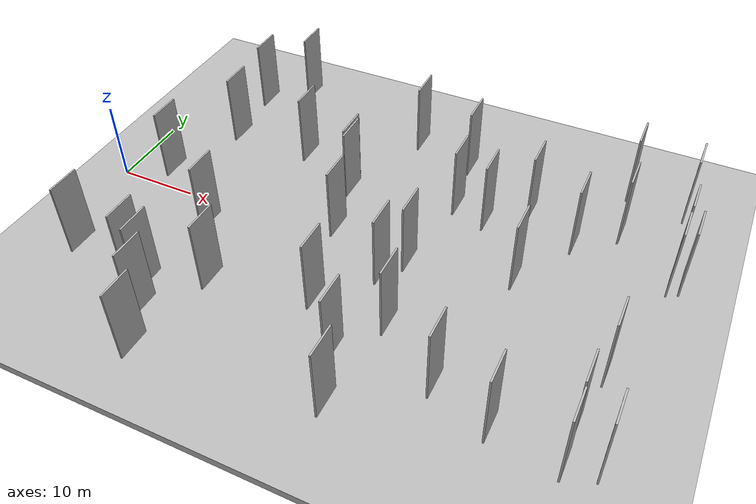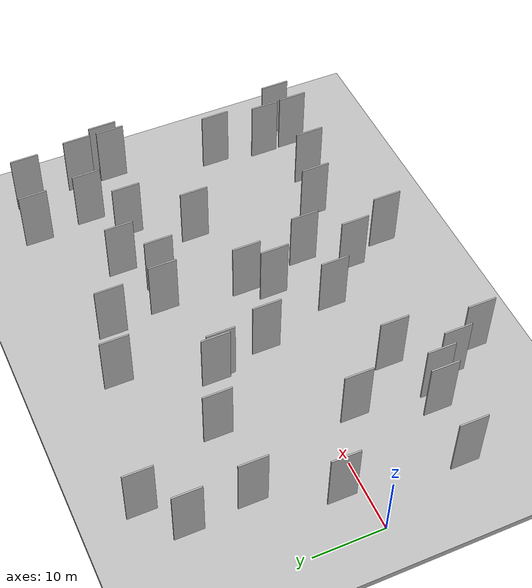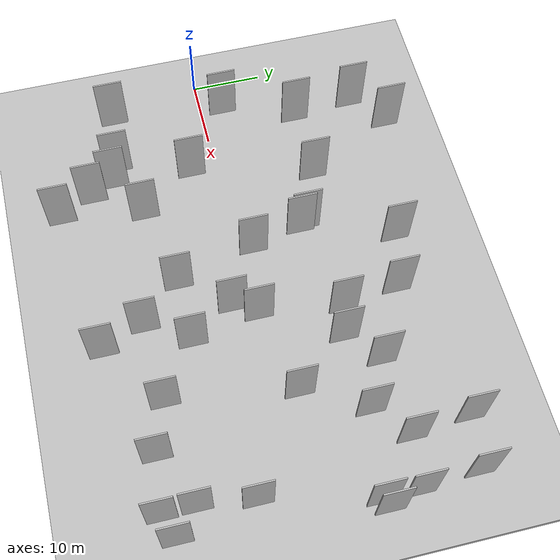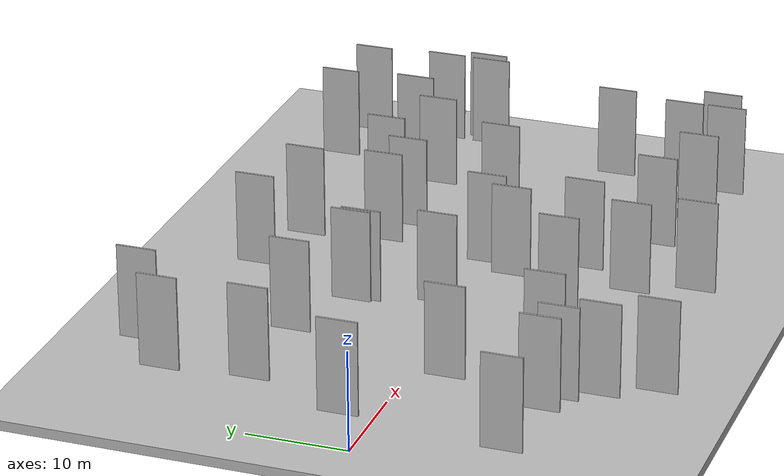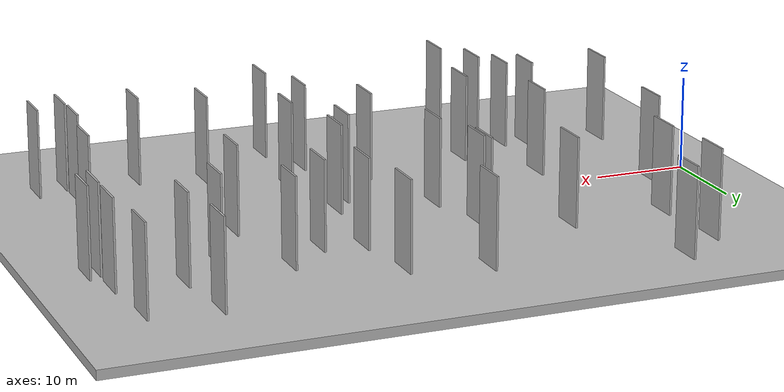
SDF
<?xml version="1.0" encoding="utf-8"?>

<sdf version="1.6">

   <world name="default">

      <gui fullscreen="0">

         <camera name="user_camera">

            <pose>-15 0 4.57585 0 0 0</pose>

            <view_controller>orbit</view_controller>

         </camera>

      </gui>

      <scene>

         <sky>

           <clouds>

             <speed>12</speed>

           </clouds>

         </sky>

         <ambient>0.4 0.4 0.4 1</ambient>

         <background>0.7 0.7 0.7 1</background>

         <shadows>1</shadows>

      </scene>

      <gravity>0 0 -9.8066</gravity>

      <magnetic_field>6e-06 2.3e-05 -4.2e-05</magnetic_field>

      <physics default="0" name="default_physics" type="ode">

         <ode>

            <solver>

               <type>quick</type>

               <iters>10</iters>

               <sor>1.0</sor>

               <use_dynamic_moi_rescaling>0</use_dynamic_moi_rescaling>

            </solver>

            <constraints>

               <cfm>0</cfm>

               <erp>0.2</erp>

               <contact_max_correcting_vel>100</contact_max_correcting_vel>

               <contact_surface_layer>0.001</contact_surface_layer>

            </constraints>

         </ode>

         <max_step_size>0.004</max_step_size>

         <real_time_factor>1</real_time_factor>

         <real_time_update_rate>250</real_time_update_rate>

      </physics>

      <light name="sun" type="directional">

         <cast_shadows>1</cast_shadows>

         <pose>0 0 10 0 0 0</pose>

         <diffuse>0.8 0.8 0.8 1</diffuse>

         <specular>0.2 0.2 0.2 1</specular>

         <attenuation>

            <range>1000</range>

            <constant>0.9</constant>

            <linear>0.01</linear>

            <quadratic>0.001</quadratic>

         </attenuation>

         <direction>-0.5 0.1 -0.9</direction>

      </light>

      <include>

         <name>ground_plane_1</name>

         <uri>model://HANNAS_ground_plane</uri>

         <pose>0 0 0  0 0 0</pose>

      </include>

      <include>

         <name>ground_plane_2</name>

         <uri>model://HANNAS_ground_plane</uri>

         <pose>100 0 0  0 0 0</pose>

      </include>

      <model name="HANNAS_wall_1">

         <static>1</static>

         <pose frame="">40.7307 19.8283 0.0 0.000000 0.000000 1.570796</pose>

         <link name="link">

            <pose frame="">0 0 5.00 0 0 0</pose>

            <collision name="collision">

               <geometry>

                  <box>

                     <size>4.00 0.2 10.00</size>

                  </box>

               </geometry>

               <max_contacts>10</max_contacts>

               <surface>

                  <contact>

                     <ode/>

                  </contact>

                  <bounce/>

                  <friction>

                     <torsional>

                        <ode/>

                     </torsional>

                     <ode/>

                  </friction>

               </surface>

            </collision>

            <visual name="visual">

               <cast_shadows>0</cast_shadows>

               <geometry>

                  <box>

                     <size>4.00 0.2 10.00</size>

                  </box>

               </geometry>

               <material>

                  <script>

                     <uri>model://HANNAS_wall/materials/scripts</uri>

                     <uri>model://HANNAS_wall/materials/textures</uri>

                     <name>vrc/HANNAS_wall</name>

                  </script>

               </material>

            </visual>

            <self_collide>0</self_collide>

            <enable_wind>0</enable_wind>

            <kinematic>0</kinematic>

         </link>

      </model>

      <model name="HANNAS_wall_2">

         <static>1</static>

         <pose frame="">33.2767 -9.0549 0.0 0.000000 0.000000 1.570796</pose>

         <link name="link">

            <pose frame="">0 0 5.00 0 0 0</pose>

            <collision name="collision">

               <geometry>

                  <box>

                     <size>4.00 0.2 10.00</size>

                  </box>

               </geometry>

               <max_contacts>10</max_contacts>

               <surface>

                  <contact>

                     <ode/>

                  </contact>

                  <bounce/>

                  <friction>

                     <torsional>

                        <ode/>

                     </torsional>

                     <ode/>

                  </friction>

               </surface>

            </collision>

            <visual name="visual">

               <cast_shadows>0</cast_shadows>

               <geometry>

                  <box>

                     <size>4.00 0.2 10.00</size>

                  </box>

               </geometry>

               <material>

                  <script>

                     <uri>model://HANNAS_wall/materials/scripts</uri>

                     <uri>model://HANNAS_wall/materials/textures</uri>

                     <name>vrc/HANNAS_wall</name>

                  </script>

               </material>

            </visual>

            <self_collide>0</self_collide>

            <enable_wind>0</enable_wind>

            <kinematic>0</kinematic>

         </link>

      </model>

      <model name="HANNAS_wall_3">

         <static>1</static>

         <pose frame="">8.7063 22.1134 0.0 0.000000 0.000000 1.570796</pose>

         <link name="link">

            <pose frame="">0 0 5.00 0 0 0</pose>

            <collision name="collision">

               <geometry>

                  <box>

                     <size>4.00 0.2 10.00</size>

                  </box>

               </geometry>

               <max_contacts>10</max_contacts>

               <surface>

                  <contact>

                     <ode/>

                  </contact>

                  <bounce/>

                  <friction>

                     <torsional>

                        <ode/>

                     </torsional>

                     <ode/>

                  </friction>

               </surface>

            </collision>

            <visual name="visual">

               <cast_shadows>0</cast_shadows>

               <geometry>

                  <box>

                     <size>4.00 0.2 10.00</size>

                  </box>

               </geometry>

               <material>

                  <script>

                     <uri>model://HANNAS_wall/materials/scripts</uri>

                     <uri>model://HANNAS_wall/materials/textures</uri>

                     <name>vrc/HANNAS_wall</name>

                  </script>

               </material>

            </visual>

            <self_collide>0</self_collide>

            <enable_wind>0</enable_wind>

            <kinematic>0</kinematic>

         </link>

      </model>

      <model name="HANNAS_wall_4">

         <static>1</static>

         <pose frame="">32.7953 22.0406 0.0 0.000000 0.000000 1.570796</pose>

         <link name="link">

            <pose frame="">0 0 5.00 0 0 0</pose>

            <collision name="collision">

               <geometry>

                  <box>

                     <size>4.00 0.2 10.00</size>

                  </box>

               </geometry>

               <max_contacts>10</max_contacts>

               <surface>

                  <contact>

                     <ode/>

                  </contact>

                  <bounce/>

                  <friction>

                     <torsional>

                        <ode/>

                     </torsional>

                     <ode/>

                  </friction>

               </surface>

            </collision>

            <visual name="visual">

               <cast_shadows>0</cast_shadows>

               <geometry>

                  <box>

                     <size>4.00 0.2 10.00</size>

                  </box>

               </geometry>

               <material>

                  <script>

                     <uri>model://HANNAS_wall/materials/scripts</uri>

                     <uri>model://HANNAS_wall/materials/textures</uri>

                     <name>vrc/HANNAS_wall</name>

                  </script>

               </material>

            </visual>

            <self_collide>0</self_collide>

            <enable_wind>0</enable_wind>

            <kinematic>0</kinematic>

         </link>

      </model>

      <model name="HANNAS_wall_5">

         <static>1</static>

         <pose frame="">38.3207 -2.6316 0.0 0.000000 0.000000 1.570796</pose>

         <link name="link">

            <pose frame="">0 0 5.00 0 0 0</pose>

            <collision name="collision">

               <geometry>

                  <box>

                     <size>4.00 0.2 10.00</size>

                  </box>

               </geometry>

               <max_contacts>10</max_contacts>

               <surface>

                  <contact>

                     <ode/>

                  </contact>

                  <bounce/>

                  <friction>

                     <torsional>

                        <ode/>

                     </torsional>

                     <ode/>

                  </friction>

               </surface>

            </collision>

            <visual name="visual">

               <cast_shadows>0</cast_shadows>

               <geometry>

                  <box>

                     <size>4.00 0.2 10.00</size>

                  </box>

               </geometry>

               <material>

                  <script>

                     <uri>model://HANNAS_wall/materials/scripts</uri>

                     <uri>model://HANNAS_wall/materials/textures</uri>

                     <name>vrc/HANNAS_wall</name>

                  </script>

               </material>

            </visual>

            <self_collide>0</self_collide>

            <enable_wind>0</enable_wind>

            <kinematic>0</kinematic>

         </link>

      </model>

      <model name="HANNAS_wall_6">

         <static>1</static>

         <pose frame="">3.9471 -13.0017 0.0 0.000000 0.000000 1.570796</pose>

         <link name="link">

            <pose frame="">0 0 5.00 0 0 0</pose>

            <collision name="collision">

               <geometry>

                  <box>

                     <size>4.00 0.2 10.00</size>

                  </box>

               </geometry>

               <max_contacts>10</max_contacts>

               <surface>

                  <contact>

                     <ode/>

                  </contact>

                  <bounce/>

                  <friction>

                     <torsional>

                        <ode/>

                     </torsional>

                     <ode/>

                  </friction>

               </surface>

            </collision>

            <visual name="visual">

               <cast_shadows>0</cast_shadows>

               <geometry>

                  <box>

                     <size>4.00 0.2 10.00</size>

                  </box>

               </geometry>

               <material>

                  <script>

                     <uri>model://HANNAS_wall/materials/scripts</uri>

                     <uri>model://HANNAS_wall/materials/textures</uri>

                     <name>vrc/HANNAS_wall</name>

                  </script>

               </material>

            </visual>

            <self_collide>0</self_collide>

            <enable_wind>0</enable_wind>

            <kinematic>0</kinematic>

         </link>

      </model>

      <model name="HANNAS_wall_7">

         <static>1</static>

         <pose frame="">56.5104 -16.4994 0.0 0.000000 0.000000 1.570796</pose>

         <link name="link">

            <pose frame="">0 0 5.00 0 0 0</pose>

            <collision name="collision">

               <geometry>

                  <box>

                     <size>4.00 0.2 10.00</size>

                  </box>

               </geometry>

               <max_contacts>10</max_contacts>

               <surface>

                  <contact>

                     <ode/>

                  </contact>

                  <bounce/>

                  <friction>

                     <torsional>

                        <ode/>

                     </torsional>

                     <ode/>

                  </friction>

               </surface>

            </collision>

            <visual name="visual">

               <cast_shadows>0</cast_shadows>

               <geometry>

                  <box>

                     <size>4.00 0.2 10.00</size>

                  </box>

               </geometry>

               <material>

                  <script>

                     <uri>model://HANNAS_wall/materials/scripts</uri>

                     <uri>model://HANNAS_wall/materials/textures</uri>

                     <name>vrc/HANNAS_wall</name>

                  </script>

               </material>

            </visual>

            <self_collide>0</self_collide>

            <enable_wind>0</enable_wind>

            <kinematic>0</kinematic>

         </link>

      </model>

      <model name="HANNAS_wall_8">

         <static>1</static>

         <pose frame="">46.0687 10.8456 0.0 0.000000 0.000000 1.570796</pose>

         <link name="link">

            <pose frame="">0 0 5.00 0 0 0</pose>

            <collision name="collision">

               <geometry>

                  <box>

                     <size>4.00 0.2 10.00</size>

                  </box>

               </geometry>

               <max_contacts>10</max_contacts>

               <surface>

                  <contact>

                     <ode/>

                  </contact>

                  <bounce/>

                  <friction>

                     <torsional>

                        <ode/>

                     </torsional>

                     <ode/>

                  </friction>

               </surface>

            </collision>

            <visual name="visual">

               <cast_shadows>0</cast_shadows>

               <geometry>

                  <box>

                     <size>4.00 0.2 10.00</size>

                  </box>

               </geometry>

               <material>

                  <script>

                     <uri>model://HANNAS_wall/materials/scripts</uri>

                     <uri>model://HANNAS_wall/materials/textures</uri>

                     <name>vrc/HANNAS_wall</name>

                  </script>

               </material>

            </visual>

            <self_collide>0</self_collide>

            <enable_wind>0</enable_wind>

            <kinematic>0</kinematic>

         </link>

      </model>

      <model name="HANNAS_wall_9">

         <static>1</static>

         <pose frame="">9.5039 13.4034 0.0 0.000000 0.000000 1.570796</pose>

         <link name="link">

            <pose frame="">0 0 5.00 0 0 0</pose>

            <collision name="collision">

               <geometry>

                  <box>

                     <size>4.00 0.2 10.00</size>

                  </box>

               </geometry>

               <max_contacts>10</max_contacts>

               <surface>

                  <contact>

                     <ode/>

                  </contact>

                  <bounce/>

                  <friction>

                     <torsional>

                        <ode/>

                     </torsional>

                     <ode/>

                  </friction>

               </surface>

            </collision>

            <visual name="visual">

               <cast_shadows>0</cast_shadows>

               <geometry>

                  <box>

                     <size>4.00 0.2 10.00</size>

                  </box>

               </geometry>

               <material>

                  <script>

                     <uri>model://HANNAS_wall/materials/scripts</uri>

                     <uri>model://HANNAS_wall/materials/textures</uri>

                     <name>vrc/HANNAS_wall</name>

                  </script>

               </material>

            </visual>

            <self_collide>0</self_collide>

            <enable_wind>0</enable_wind>

            <kinematic>0</kinematic>

         </link>

      </model>

      <model name="HANNAS_wall_10">

         <static>1</static>

         <pose frame="">68.3991 14.4143 0.0 0.000000 0.000000 1.570796</pose>

         <link name="link">

            <pose frame="">0 0 5.00 0 0 0</pose>

            <collision name="collision">

               <geometry>

                  <box>

                     <size>4.00 0.2 10.00</size>

                  </box>

               </geometry>

               <max_contacts>10</max_contacts>

               <surface>

                  <contact>

                     <ode/>

                  </contact>

                  <bounce/>

                  <friction>

                     <torsional>

                        <ode/>

                     </torsional>

                     <ode/>

                  </friction>

               </surface>

            </collision>

            <visual name="visual">

               <cast_shadows>0</cast_shadows>

               <geometry>

                  <box>

                     <size>4.00 0.2 10.00</size>

                  </box>

               </geometry>

               <material>

                  <script>

                     <uri>model://HANNAS_wall/materials/scripts</uri>

                     <uri>model://HANNAS_wall/materials/textures</uri>

                     <name>vrc/HANNAS_wall</name>

                  </script>

               </material>

            </visual>

            <self_collide>0</self_collide>

            <enable_wind>0</enable_wind>

            <kinematic>0</kinematic>

         </link>

      </model>

      <model name="HANNAS_wall_11">

         <static>1</static>

         <pose frame="">16.8384 -18.1993 0.0 0.000000 0.000000 1.570796</pose>

         <link name="link">

            <pose frame="">0 0 5.00 0 0 0</pose>

            <collision name="collision">

               <geometry>

                  <box>

                     <size>4.00 0.2 10.00</size>

                  </box>

               </geometry>

               <max_contacts>10</max_contacts>

               <surface>

                  <contact>

                     <ode/>

                  </contact>

                  <bounce/>

                  <friction>

                     <torsional>

                        <ode/>

                     </torsional>

                     <ode/>

                  </friction>

               </surface>

            </collision>

            <visual name="visual">

               <cast_shadows>0</cast_shadows>

               <geometry>

                  <box>

                     <size>4.00 0.2 10.00</size>

                  </box>

               </geometry>

               <material>

                  <script>

                     <uri>model://HANNAS_wall/materials/scripts</uri>

                     <uri>model://HANNAS_wall/materials/textures</uri>

                     <name>vrc/HANNAS_wall</name>

                  </script>

               </material>

            </visual>

            <self_collide>0</self_collide>

            <enable_wind>0</enable_wind>

            <kinematic>0</kinematic>

         </link>

      </model>

      <model name="HANNAS_wall_12">

         <static>1</static>

         <pose frame="">64.0251 -12.9024 0.0 0.000000 0.000000 1.570796</pose>

         <link name="link">

            <pose frame="">0 0 5.00 0 0 0</pose>

            <collision name="collision">

               <geometry>

                  <box>

                     <size>4.00 0.2 10.00</size>

                  </box>

               </geometry>

               <max_contacts>10</max_contacts>

               <surface>

                  <contact>

                     <ode/>

                  </contact>

                  <bounce/>

                  <friction>

                     <torsional>

                        <ode/>

                     </torsional>

                     <ode/>

                  </friction>

               </surface>

            </collision>

            <visual name="visual">

               <cast_shadows>0</cast_shadows>

               <geometry>

                  <box>

                     <size>4.00 0.2 10.00</size>

                  </box>

               </geometry>

               <material>

                  <script>

                     <uri>model://HANNAS_wall/materials/scripts</uri>

                     <uri>model://HANNAS_wall/materials/textures</uri>

                     <name>vrc/HANNAS_wall</name>

                  </script>

               </material>

            </visual>

            <self_collide>0</self_collide>

            <enable_wind>0</enable_wind>

            <kinematic>0</kinematic>

         </link>

      </model>

      <model name="HANNAS_wall_13">

         <static>1</static>

         <pose frame="">15.6919 -3.6150 0.0 0.000000 0.000000 1.570796</pose>

         <link name="link">

            <pose frame="">0 0 5.00 0 0 0</pose>

            <collision name="collision">

               <geometry>

                  <box>

                     <size>4.00 0.2 10.00</size>

                  </box>

               </geometry>

               <max_contacts>10</max_contacts>

               <surface>

                  <contact>

                     <ode/>

                  </contact>

                  <bounce/>

                  <friction>

                     <torsional>

                        <ode/>

                     </torsional>

                     <ode/>

                  </friction>

               </surface>

            </collision>

            <visual name="visual">

               <cast_shadows>0</cast_shadows>

               <geometry>

                  <box>

                     <size>4.00 0.2 10.00</size>

                  </box>

               </geometry>

               <material>

                  <script>

                     <uri>model://HANNAS_wall/materials/scripts</uri>

                     <uri>model://HANNAS_wall/materials/textures</uri>

                     <name>vrc/HANNAS_wall</name>

                  </script>

               </material>

            </visual>

            <self_collide>0</self_collide>

            <enable_wind>0</enable_wind>

            <kinematic>0</kinematic>

         </link>

      </model>

      <model name="HANNAS_wall_14">

         <static>1</static>

         <pose frame="">64.1314 -17.3532 0.0 0.000000 0.000000 1.570796</pose>

         <link name="link">

            <pose frame="">0 0 5.00 0 0 0</pose>

            <collision name="collision">

               <geometry>

                  <box>

                     <size>4.00 0.2 10.00</size>

                  </box>

               </geometry>

               <max_contacts>10</max_contacts>

               <surface>

                  <contact>

                     <ode/>

                  </contact>

                  <bounce/>

                  <friction>

                     <torsional>

                        <ode/>

                     </torsional>

                     <ode/>

                  </friction>

               </surface>

            </collision>

            <visual name="visual">

               <cast_shadows>0</cast_shadows>

               <geometry>

                  <box>

                     <size>4.00 0.2 10.00</size>

                  </box>

               </geometry>

               <material>

                  <script>

                     <uri>model://HANNAS_wall/materials/scripts</uri>

                     <uri>model://HANNAS_wall/materials/textures</uri>

                     <name>vrc/HANNAS_wall</name>

                  </script>

               </material>

            </visual>

            <self_collide>0</self_collide>

            <enable_wind>0</enable_wind>

            <kinematic>0</kinematic>

         </link>

      </model>

      <model name="HANNAS_wall_15">

         <static>1</static>

         <pose frame="">50.5043 14.7641 0.0 0.000000 0.000000 1.570796</pose>

         <link name="link">

            <pose frame="">0 0 5.00 0 0 0</pose>

            <collision name="collision">

               <geometry>

                  <box>

                     <size>4.00 0.2 10.00</size>

                  </box>

               </geometry>

               <max_contacts>10</max_contacts>

               <surface>

                  <contact>

                     <ode/>

                  </contact>

                  <bounce/>

                  <friction>

                     <torsional>

                        <ode/>

                     </torsional>

                     <ode/>

                  </friction>

               </surface>

            </collision>

            <visual name="visual">

               <cast_shadows>0</cast_shadows>

               <geometry>

                  <box>

                     <size>4.00 0.2 10.00</size>

                  </box>

               </geometry>

               <material>

                  <script>

                     <uri>model://HANNAS_wall/materials/scripts</uri>

                     <uri>model://HANNAS_wall/materials/textures</uri>

                     <name>vrc/HANNAS_wall</name>

                  </script>

               </material>

            </visual>

            <self_collide>0</self_collide>

            <enable_wind>0</enable_wind>

            <kinematic>0</kinematic>

         </link>

      </model>

      <model name="HANNAS_wall_16">

         <static>1</static>

         <pose frame="">21.2338 -11.4759 0.0 0.000000 0.000000 1.570796</pose>

         <link name="link">

            <pose frame="">0 0 5.00 0 0 0</pose>

            <collision name="collision">

               <geometry>

                  <box>

                     <size>4.00 0.2 10.00</size>

                  </box>

               </geometry>

               <max_contacts>10</max_contacts>

               <surface>

                  <contact>

                     <ode/>

                  </contact>

                  <bounce/>

                  <friction>

                     <torsional>

                        <ode/>

                     </torsional>

                     <ode/>

                  </friction>

               </surface>

            </collision>

            <visual name="visual">

               <cast_shadows>0</cast_shadows>

               <geometry>

                  <box>

                     <size>4.00 0.2 10.00</size>

                  </box>

               </geometry>

               <material>

                  <script>

                     <uri>model://HANNAS_wall/materials/scripts</uri>

                     <uri>model://HANNAS_wall/materials/textures</uri>

                     <name>vrc/HANNAS_wall</name>

                  </script>

               </material>

            </visual>

            <self_collide>0</self_collide>

            <enable_wind>0</enable_wind>

            <kinematic>0</kinematic>

         </link>

      </model>

      <model name="HANNAS_wall_17">

         <static>1</static>

         <pose frame="">67.4018 -16.0498 0.0 0.000000 0.000000 1.570796</pose>

         <link name="link">

            <pose frame="">0 0 5.00 0 0 0</pose>

            <collision name="collision">

               <geometry>

                  <box>

                     <size>4.00 0.2 10.00</size>

                  </box>

               </geometry>

               <max_contacts>10</max_contacts>

               <surface>

                  <contact>

                     <ode/>

                  </contact>

                  <bounce/>

                  <friction>

                     <torsional>

                        <ode/>

                     </torsional>

                     <ode/>

                  </friction>

               </surface>

            </collision>

            <visual name="visual">

               <cast_shadows>0</cast_shadows>

               <geometry>

                  <box>

                     <size>4.00 0.2 10.00</size>

                  </box>

               </geometry>

               <material>

                  <script>

                     <uri>model://HANNAS_wall/materials/scripts</uri>

                     <uri>model://HANNAS_wall/materials/textures</uri>

                     <name>vrc/HANNAS_wall</name>

                  </script>

               </material>

            </visual>

            <self_collide>0</self_collide>

            <enable_wind>0</enable_wind>

            <kinematic>0</kinematic>

         </link>

      </model>

      <model name="HANNAS_wall_18">

         <static>1</static>

         <pose frame="">28.4994 9.3930 0.0 0.000000 0.000000 1.570796</pose>

         <link name="link">

            <pose frame="">0 0 5.00 0 0 0</pose>

            <collision name="collision">

               <geometry>

                  <box>

                     <size>4.00 0.2 10.00</size>

                  </box>

               </geometry>

               <max_contacts>10</max_contacts>

               <surface>

                  <contact>

                     <ode/>

                  </contact>

                  <bounce/>

                  <friction>

                     <torsional>

                        <ode/>

                     </torsional>

                     <ode/>

                  </friction>

               </surface>

            </collision>

            <visual name="visual">

               <cast_shadows>0</cast_shadows>

               <geometry>

                  <box>

                     <size>4.00 0.2 10.00</size>

                  </box>

               </geometry>

               <material>

                  <script>

                     <uri>model://HANNAS_wall/materials/scripts</uri>

                     <uri>model://HANNAS_wall/materials/textures</uri>

                     <name>vrc/HANNAS_wall</name>

                  </script>

               </material>

            </visual>

            <self_collide>0</self_collide>

            <enable_wind>0</enable_wind>

            <kinematic>0</kinematic>

         </link>

      </model>

      <model name="HANNAS_wall_19">

         <static>1</static>

         <pose frame="">28.0686 10.2553 0.0 0.000000 0.000000 1.570796</pose>

         <link name="link">

            <pose frame="">0 0 5.00 0 0 0</pose>

            <collision name="collision">

               <geometry>

                  <box>

                     <size>4.00 0.2 10.00</size>

                  </box>

               </geometry>

               <max_contacts>10</max_contacts>

               <surface>

                  <contact>

                     <ode/>

                  </contact>

                  <bounce/>

                  <friction>

                     <torsional>

                        <ode/>

                     </torsional>

                     <ode/>

                  </friction>

               </surface>

            </collision>

            <visual name="visual">

               <cast_shadows>0</cast_shadows>

               <geometry>

                  <box>

                     <size>4.00 0.2 10.00</size>

                  </box>

               </geometry>

               <material>

                  <script>

                     <uri>model://HANNAS_wall/materials/scripts</uri>

                     <uri>model://HANNAS_wall/materials/textures</uri>

                     <name>vrc/HANNAS_wall</name>

                  </script>

               </material>

            </visual>

            <self_collide>0</self_collide>

            <enable_wind>0</enable_wind>

            <kinematic>0</kinematic>

         </link>

      </model>

      <model name="HANNAS_wall_20">

         <static>1</static>

         <pose frame="">68.3465 9.4597 0.0 0.000000 0.000000 1.570796</pose>

         <link name="link">

            <pose frame="">0 0 5.00 0 0 0</pose>

            <collision name="collision">

               <geometry>

                  <box>

                     <size>4.00 0.2 10.00</size>

                  </box>

               </geometry>

               <max_contacts>10</max_contacts>

               <surface>

                  <contact>

                     <ode/>

                  </contact>

                  <bounce/>

                  <friction>

                     <torsional>

                        <ode/>

                     </torsional>

                     <ode/>

                  </friction>

               </surface>

            </collision>

            <visual name="visual">

               <cast_shadows>0</cast_shadows>

               <geometry>

                  <box>

                     <size>4.00 0.2 10.00</size>

                  </box>

               </geometry>

               <material>

                  <script>

                     <uri>model://HANNAS_wall/materials/scripts</uri>

                     <uri>model://HANNAS_wall/materials/textures</uri>

                     <name>vrc/HANNAS_wall</name>

                  </script>

               </material>

            </visual>

            <self_collide>0</self_collide>

            <enable_wind>0</enable_wind>

            <kinematic>0</kinematic>

         </link>

      </model>

      <model name="HANNAS_wall_21">

         <static>1</static>

         <pose frame="">49.7280 -14.1399 0.0 0.000000 0.000000 1.570796</pose>

         <link name="link">

            <pose frame="">0 0 5.00 0 0 0</pose>

            <collision name="collision">

               <geometry>

                  <box>

                     <size>4.00 0.2 10.00</size>

                  </box>

               </geometry>

               <max_contacts>10</max_contacts>

               <surface>

                  <contact>

                     <ode/>

                  </contact>

                  <bounce/>

                  <friction>

                     <torsional>

                        <ode/>

                     </torsional>

                     <ode/>

                  </friction>

               </surface>

            </collision>

            <visual name="visual">

               <cast_shadows>0</cast_shadows>

               <geometry>

                  <box>

                     <size>4.00 0.2 10.00</size>

                  </box>

               </geometry>

               <material>

                  <script>

                     <uri>model://HANNAS_wall/materials/scripts</uri>

                     <uri>model://HANNAS_wall/materials/textures</uri>

                     <name>vrc/HANNAS_wall</name>

                  </script>

               </material>

            </visual>

            <self_collide>0</self_collide>

            <enable_wind>0</enable_wind>

            <kinematic>0</kinematic>

         </link>

      </model>

      <model name="HANNAS_wall_22">

         <static>1</static>

         <pose frame="">61.4593 15.4878 0.0 0.000000 0.000000 1.570796</pose>

         <link name="link">

            <pose frame="">0 0 5.00 0 0 0</pose>

            <collision name="collision">

               <geometry>

                  <box>

                     <size>4.00 0.2 10.00</size>

                  </box>

               </geometry>

               <max_contacts>10</max_contacts>

               <surface>

                  <contact>

                     <ode/>

                  </contact>

                  <bounce/>

                  <friction>

                     <torsional>

                        <ode/>

                     </torsional>

                     <ode/>

                  </friction>

               </surface>

            </collision>

            <visual name="visual">

               <cast_shadows>0</cast_shadows>

               <geometry>

                  <box>

                     <size>4.00 0.2 10.00</size>

                  </box>

               </geometry>

               <material>

                  <script>

                     <uri>model://HANNAS_wall/materials/scripts</uri>

                     <uri>model://HANNAS_wall/materials/textures</uri>

                     <name>vrc/HANNAS_wall</name>

                  </script>

               </material>

            </visual>

            <self_collide>0</self_collide>

            <enable_wind>0</enable_wind>

            <kinematic>0</kinematic>

         </link>

      </model>

      <model name="HANNAS_wall_23">

         <static>1</static>

         <pose frame="">12.3854 -13.8442 0.0 0.000000 0.000000 1.570796</pose>

         <link name="link">

            <pose frame="">0 0 5.00 0 0 0</pose>

            <collision name="collision">

               <geometry>

                  <box>

                     <size>4.00 0.2 10.00</size>

                  </box>

               </geometry>

               <max_contacts>10</max_contacts>

               <surface>

                  <contact>

                     <ode/>

                  </contact>

                  <bounce/>

                  <friction>

                     <torsional>

                        <ode/>

                     </torsional>

                     <ode/>

                  </friction>

               </surface>

            </collision>

            <visual name="visual">

               <cast_shadows>0</cast_shadows>

               <geometry>

                  <box>

                     <size>4.00 0.2 10.00</size>

                  </box>

               </geometry>

               <material>

                  <script>

                     <uri>model://HANNAS_wall/materials/scripts</uri>

                     <uri>model://HANNAS_wall/materials/textures</uri>

                     <name>vrc/HANNAS_wall</name>

                  </script>

               </material>

            </visual>

            <self_collide>0</self_collide>

            <enable_wind>0</enable_wind>

            <kinematic>0</kinematic>

         </link>

      </model>

      <model name="HANNAS_wall_24">

         <static>1</static>

         <pose frame="">40.3243 0.5513 0.0 0.000000 0.000000 1.570796</pose>

         <link name="link">

            <pose frame="">0 0 5.00 0 0 0</pose>

            <collision name="collision">

               <geometry>

                  <box>

                     <size>4.00 0.2 10.00</size>

                  </box>

               </geometry>

               <max_contacts>10</max_contacts>

               <surface>

                  <contact>

                     <ode/>

                  </contact>

                  <bounce/>

                  <friction>

                     <torsional>

                        <ode/>

                     </torsional>

                     <ode/>

                  </friction>

               </surface>

            </collision>

            <visual name="visual">

               <cast_shadows>0</cast_shadows>

               <geometry>

                  <box>

                     <size>4.00 0.2 10.00</size>

                  </box>

               </geometry>

               <material>

                  <script>

                     <uri>model://HANNAS_wall/materials/scripts</uri>

                     <uri>model://HANNAS_wall/materials/textures</uri>

                     <name>vrc/HANNAS_wall</name>

                  </script>

               </material>

            </visual>

            <self_collide>0</self_collide>

            <enable_wind>0</enable_wind>

            <kinematic>0</kinematic>

         </link>

      </model>

      <model name="HANNAS_wall_25">

         <static>1</static>

         <pose frame="">19.2775 -23.0339 0.0 0.000000 0.000000 1.570796</pose>

         <link name="link">

            <pose frame="">0 0 5.00 0 0 0</pose>

            <collision name="collision">

               <geometry>

                  <box>

                     <size>4.00 0.2 10.00</size>

                  </box>

               </geometry>

               <max_contacts>10</max_contacts>

               <surface>

                  <contact>

                     <ode/>

                  </contact>

                  <bounce/>

                  <friction>

                     <torsional>

                        <ode/>

                     </torsional>

                     <ode/>

                  </friction>

               </surface>

            </collision>

            <visual name="visual">

               <cast_shadows>0</cast_shadows>

               <geometry>

                  <box>

                     <size>4.00 0.2 10.00</size>

                  </box>

               </geometry>

               <material>

                  <script>

                     <uri>model://HANNAS_wall/materials/scripts</uri>

                     <uri>model://HANNAS_wall/materials/textures</uri>

                     <name>vrc/HANNAS_wall</name>

                  </script>

               </material>

            </visual>

            <self_collide>0</self_collide>

            <enable_wind>0</enable_wind>

            <kinematic>0</kinematic>

         </link>

      </model>

      <model name="HANNAS_wall_26">

         <static>1</static>

         <pose frame="">56.8309 11.3789 0.0 0.000000 0.000000 1.570796</pose>

         <link name="link">

            <pose frame="">0 0 5.00 0 0 0</pose>

            <collision name="collision">

               <geometry>

                  <box>

                     <size>4.00 0.2 10.00</size>

                  </box>

               </geometry>

               <max_contacts>10</max_contacts>

               <surface>

                  <contact>

                     <ode/>

                  </contact>

                  <bounce/>

                  <friction>

                     <torsional>

                        <ode/>

                     </torsional>

                     <ode/>

                  </friction>

               </surface>

            </collision>

            <visual name="visual">

               <cast_shadows>0</cast_shadows>

               <geometry>

                  <box>

                     <size>4.00 0.2 10.00</size>

                  </box>

               </geometry>

               <material>

                  <script>

                     <uri>model://HANNAS_wall/materials/scripts</uri>

                     <uri>model://HANNAS_wall/materials/textures</uri>

                     <name>vrc/HANNAS_wall</name>

                  </script>

               </material>

            </visual>

            <self_collide>0</self_collide>

            <enable_wind>0</enable_wind>

            <kinematic>0</kinematic>

         </link>

      </model>

      <model name="HANNAS_wall_27">

         <static>1</static>

         <pose frame="">65.0187 -5.4609 0.0 0.000000 0.000000 1.570796</pose>

         <link name="link">

            <pose frame="">0 0 5.00 0 0 0</pose>

            <collision name="collision">

               <geometry>

                  <box>

                     <size>4.00 0.2 10.00</size>

                  </box>

               </geometry>

               <max_contacts>10</max_contacts>

               <surface>

                  <contact>

                     <ode/>

                  </contact>

                  <bounce/>

                  <friction>

                     <torsional>

                        <ode/>

                     </torsional>

                     <ode/>

                  </friction>

               </surface>

            </collision>

            <visual name="visual">

               <cast_shadows>0</cast_shadows>

               <geometry>

                  <box>

                     <size>4.00 0.2 10.00</size>

                  </box>

               </geometry>

               <material>

                  <script>

                     <uri>model://HANNAS_wall/materials/scripts</uri>

                     <uri>model://HANNAS_wall/materials/textures</uri>

                     <name>vrc/HANNAS_wall</name>

                  </script>

               </material>

            </visual>

            <self_collide>0</self_collide>

            <enable_wind>0</enable_wind>

            <kinematic>0</kinematic>

         </link>

      </model>

      <model name="HANNAS_wall_28">

         <static>1</static>

         <pose frame="">20.0967 13.4360 0.0 0.000000 0.000000 1.570796</pose>

         <link name="link">

            <pose frame="">0 0 5.00 0 0 0</pose>

            <collision name="collision">

               <geometry>

                  <box>

                     <size>4.00 0.2 10.00</size>

                  </box>

               </geometry>

               <max_contacts>10</max_contacts>

               <surface>

                  <contact>

                     <ode/>

                  </contact>

                  <bounce/>

                  <friction>

                     <torsional>

                        <ode/>

                     </torsional>

                     <ode/>

                  </friction>

               </surface>

            </collision>

            <visual name="visual">

               <cast_shadows>0</cast_shadows>

               <geometry>

                  <box>

                     <size>4.00 0.2 10.00</size>

                  </box>

               </geometry>

               <material>

                  <script>

                     <uri>model://HANNAS_wall/materials/scripts</uri>

                     <uri>model://HANNAS_wall/materials/textures</uri>

                     <name>vrc/HANNAS_wall</name>

                  </script>

               </material>

            </visual>

            <self_collide>0</self_collide>

            <enable_wind>0</enable_wind>

            <kinematic>0</kinematic>

         </link>

      </model>

      <model name="HANNAS_wall_29">

         <static>1</static>

         <pose frame="">30.1761 2.1967 0.0 0.000000 0.000000 1.570796</pose>

         <link name="link">

            <pose frame="">0 0 5.00 0 0 0</pose>

            <collision name="collision">

               <geometry>

                  <box>

                     <size>4.00 0.2 10.00</size>

                  </box>

               </geometry>

               <max_contacts>10</max_contacts>

               <surface>

                  <contact>

                     <ode/>

                  </contact>

                  <bounce/>

                  <friction>

                     <torsional>

                        <ode/>

                     </torsional>

                     <ode/>

                  </friction>

               </surface>

            </collision>

            <visual name="visual">

               <cast_shadows>0</cast_shadows>

               <geometry>

                  <box>

                     <size>4.00 0.2 10.00</size>

                  </box>

               </geometry>

               <material>

                  <script>

                     <uri>model://HANNAS_wall/materials/scripts</uri>

                     <uri>model://HANNAS_wall/materials/textures</uri>

                     <name>vrc/HANNAS_wall</name>

                  </script>

               </material>

            </visual>

            <self_collide>0</self_collide>

            <enable_wind>0</enable_wind>

            <kinematic>0</kinematic>

         </link>

      </model>

      <model name="HANNAS_wall_30">

         <static>1</static>

         <pose frame="">13.6365 26.2984 0.0 0.000000 0.000000 1.570796</pose>

         <link name="link">

            <pose frame="">0 0 5.00 0 0 0</pose>

            <collision name="collision">

               <geometry>

                  <box>

                     <size>4.00 0.2 10.00</size>

                  </box>

               </geometry>

               <max_contacts>10</max_contacts>

               <surface>

                  <contact>

                     <ode/>

                  </contact>

                  <bounce/>

                  <friction>

                     <torsional>

                        <ode/>

                     </torsional>

                     <ode/>

                  </friction>

               </surface>

            </collision>

            <visual name="visual">

               <cast_shadows>0</cast_shadows>

               <geometry>

                  <box>

                     <size>4.00 0.2 10.00</size>

                  </box>

               </geometry>

               <material>

                  <script>

                     <uri>model://HANNAS_wall/materials/scripts</uri>

                     <uri>model://HANNAS_wall/materials/textures</uri>

                     <name>vrc/HANNAS_wall</name>

                  </script>

               </material>

            </visual>

            <self_collide>0</self_collide>

            <enable_wind>0</enable_wind>

            <kinematic>0</kinematic>

         </link>

      </model>

      <model name="HANNAS_wall_31">

         <static>1</static>

         <pose frame="">40.8926 -20.7122 0.0 0.000000 0.000000 1.570796</pose>

         <link name="link">

            <pose frame="">0 0 5.00 0 0 0</pose>

            <collision name="collision">

               <geometry>

                  <box>

                     <size>4.00 0.2 10.00</size>

                  </box>

               </geometry>

               <max_contacts>10</max_contacts>

               <surface>

                  <contact>

                     <ode/>

                  </contact>

                  <bounce/>

                  <friction>

                     <torsional>

                        <ode/>

                     </torsional>

                     <ode/>

                  </friction>

               </surface>

            </collision>

            <visual name="visual">

               <cast_shadows>0</cast_shadows>

               <geometry>

                  <box>

                     <size>4.00 0.2 10.00</size>

                  </box>

               </geometry>

               <material>

                  <script>

                     <uri>model://HANNAS_wall/materials/scripts</uri>

                     <uri>model://HANNAS_wall/materials/textures</uri>

                     <name>vrc/HANNAS_wall</name>

                  </script>

               </material>

            </visual>

            <self_collide>0</self_collide>

            <enable_wind>0</enable_wind>

            <kinematic>0</kinematic>

         </link>

      </model>

      <model name="HANNAS_wall_32">

         <static>1</static>

         <pose frame="">38.5771 -14.7041 0.0 0.000000 0.000000 1.570796</pose>

         <link name="link">

            <pose frame="">0 0 5.00 0 0 0</pose>

            <collision name="collision">

               <geometry>

                  <box>

                     <size>4.00 0.2 10.00</size>

                  </box>

               </geometry>

               <max_contacts>10</max_contacts>

               <surface>

                  <contact>

                     <ode/>

                  </contact>

                  <bounce/>

                  <friction>

                     <torsional>

                        <ode/>

                     </torsional>

                     <ode/>

                  </friction>

               </surface>

            </collision>

            <visual name="visual">

               <cast_shadows>0</cast_shadows>

               <geometry>

                  <box>

                     <size>4.00 0.2 10.00</size>

                  </box>

               </geometry>

               <material>

                  <script>

                     <uri>model://HANNAS_wall/materials/scripts</uri>

                     <uri>model://HANNAS_wall/materials/textures</uri>

                     <name>vrc/HANNAS_wall</name>

                  </script>

               </material>

            </visual>

            <self_collide>0</self_collide>

            <enable_wind>0</enable_wind>

            <kinematic>0</kinematic>

         </link>

      </model>

      <model name="HANNAS_wall_33">

         <static>1</static>

         <pose frame="">60.6215 23.5138 0.0 0.000000 0.000000 1.570796</pose>

         <link name="link">

            <pose frame="">0 0 5.00 0 0 0</pose>

            <collision name="collision">

               <geometry>

                  <box>

                     <size>4.00 0.2 10.00</size>

                  </box>

               </geometry>

               <max_contacts>10</max_contacts>

               <surface>

                  <contact>

                     <ode/>

                  </contact>

                  <bounce/>

                  <friction>

                     <torsional>

                        <ode/>

                     </torsional>

                     <ode/>

                  </friction>

               </surface>

            </collision>

            <visual name="visual">

               <cast_shadows>0</cast_shadows>

               <geometry>

                  <box>

                     <size>4.00 0.2 10.00</size>

                  </box>

               </geometry>

               <material>

                  <script>

                     <uri>model://HANNAS_wall/materials/scripts</uri>

                     <uri>model://HANNAS_wall/materials/textures</uri>

                     <name>vrc/HANNAS_wall</name>

                  </script>

               </material>

            </visual>

            <self_collide>0</self_collide>

            <enable_wind>0</enable_wind>

            <kinematic>0</kinematic>

         </link>

      </model>

      <model name="HANNAS_wall_34">

         <static>1</static>

         <pose frame="">42.1976 -8.9047 0.0 0.000000 0.000000 1.570796</pose>

         <link name="link">

            <pose frame="">0 0 5.00 0 0 0</pose>

            <collision name="collision">

               <geometry>

                  <box>

                     <size>4.00 0.2 10.00</size>

                  </box>

               </geometry>

               <max_contacts>10</max_contacts>

               <surface>

                  <contact>

                     <ode/>

                  </contact>

                  <bounce/>

                  <friction>

                     <torsional>

                        <ode/>

                     </torsional>

                     <ode/>

                  </friction>

               </surface>

            </collision>

            <visual name="visual">

               <cast_shadows>0</cast_shadows>

               <geometry>

                  <box>

                     <size>4.00 0.2 10.00</size>

                  </box>

               </geometry>

               <material>

                  <script>

                     <uri>model://HANNAS_wall/materials/scripts</uri>

                     <uri>model://HANNAS_wall/materials/textures</uri>

                     <name>vrc/HANNAS_wall</name>

                  </script>

               </material>

            </visual>

            <self_collide>0</self_collide>

            <enable_wind>0</enable_wind>

            <kinematic>0</kinematic>

         </link>

      </model>

      <model name="HANNAS_wall_35">

         <static>1</static>

         <pose frame="">69.6100 10.1425 0.0 0.000000 0.000000 1.570796</pose>

         <link name="link">

            <pose frame="">0 0 5.00 0 0 0</pose>

            <collision name="collision">

               <geometry>

                  <box>

                     <size>4.00 0.2 10.00</size>

                  </box>

               </geometry>

               <max_contacts>10</max_contacts>

               <surface>

                  <contact>

                     <ode/>

                  </contact>

                  <bounce/>

                  <friction>

                     <torsional>

                        <ode/>

                     </torsional>

                     <ode/>

                  </friction>

               </surface>

            </collision>

            <visual name="visual">

               <cast_shadows>0</cast_shadows>

               <geometry>

                  <box>

                     <size>4.00 0.2 10.00</size>

                  </box>

               </geometry>

               <material>

                  <script>

                     <uri>model://HANNAS_wall/materials/scripts</uri>

                     <uri>model://HANNAS_wall/materials/textures</uri>

                     <name>vrc/HANNAS_wall</name>

                  </script>

               </material>

            </visual>

            <self_collide>0</self_collide>

            <enable_wind>0</enable_wind>

            <kinematic>0</kinematic>

         </link>

      </model>

      <model name="HANNAS_wall_36">

         <static>1</static>

         <pose frame="">14.9835 -14.7927 0.0 0.000000 0.000000 1.570796</pose>

         <link name="link">

            <pose frame="">0 0 5.00 0 0 0</pose>

            <collision name="collision">

               <geometry>

                  <box>

                     <size>4.00 0.2 10.00</size>

                  </box>

               </geometry>

               <max_contacts>10</max_contacts>

               <surface>

                  <contact>

                     <ode/>

                  </contact>

                  <bounce/>

                  <friction>

                     <torsional>

                        <ode/>

                     </torsional>

                     <ode/>

                  </friction>

               </surface>

            </collision>

            <visual name="visual">

               <cast_shadows>0</cast_shadows>

               <geometry>

                  <box>

                     <size>4.00 0.2 10.00</size>

                  </box>

               </geometry>

               <material>

                  <script>

                     <uri>model://HANNAS_wall/materials/scripts</uri>

                     <uri>model://HANNAS_wall/materials/textures</uri>

                     <name>vrc/HANNAS_wall</name>

                  </script>

               </material>

            </visual>

            <self_collide>0</self_collide>

            <enable_wind>0</enable_wind>

            <kinematic>0</kinematic>

         </link>

      </model>

      <model name="HANNAS_wall_37">

         <static>1</static>

         <pose frame="">52.3386 3.1055 0.0 0.000000 0.000000 1.570796</pose>

         <link name="link">

            <pose frame="">0 0 5.00 0 0 0</pose>

            <collision name="collision">

               <geometry>

                  <box>

                     <size>4.00 0.2 10.00</size>

                  </box>

               </geometry>

               <max_contacts>10</max_contacts>

               <surface>

                  <contact>

                     <ode/>

                  </contact>

                  <bounce/>

                  <friction>

                     <torsional>

                        <ode/>

                     </torsional>

                     <ode/>

                  </friction>

               </surface>

            </collision>

            <visual name="visual">

               <cast_shadows>0</cast_shadows>

               <geometry>

                  <box>

                     <size>4.00 0.2 10.00</size>

                  </box>

               </geometry>

               <material>

                  <script>

                     <uri>model://HANNAS_wall/materials/scripts</uri>

                     <uri>model://HANNAS_wall/materials/textures</uri>

                     <name>vrc/HANNAS_wall</name>

                  </script>

               </material>

            </visual>

            <self_collide>0</self_collide>

            <enable_wind>0</enable_wind>

            <kinematic>0</kinematic>

         </link>

      </model>

      <model name="HANNAS_wall_38">

         <static>1</static>

         <pose frame="">5.6550 3.2007 0.0 0.000000 0.000000 1.570796</pose>

         <link name="link">

            <pose frame="">0 0 5.00 0 0 0</pose>

            <collision name="collision">

               <geometry>

                  <box>

                     <size>4.00 0.2 10.00</size>

                  </box>

               </geometry>

               <max_contacts>10</max_contacts>

               <surface>

                  <contact>

                     <ode/>

                  </contact>

                  <bounce/>

                  <friction>

                     <torsional>

                        <ode/>

                     </torsional>

                     <ode/>

                  </friction>

               </surface>

            </collision>

            <visual name="visual">

               <cast_shadows>0</cast_shadows>

               <geometry>

                  <box>

                     <size>4.00 0.2 10.00</size>

                  </box>

               </geometry>

               <material>

                  <script>

                     <uri>model://HANNAS_wall/materials/scripts</uri>

                     <uri>model://HANNAS_wall/materials/textures</uri>

                     <name>vrc/HANNAS_wall</name>

                  </script>

               </material>

            </visual>

            <self_collide>0</self_collide>

            <enable_wind>0</enable_wind>

            <kinematic>0</kinematic>

         </link>

      </model>

      <model name="HANNAS_wall_39">

         <static>1</static>

         <pose frame="">67.7492 22.3789 0.0 0.000000 0.000000 1.570796</pose>

         <link name="link">

            <pose frame="">0 0 5.00 0 0 0</pose>

            <collision name="collision">

               <geometry>

                  <box>

                     <size>4.00 0.2 10.00</size>

                  </box>

               </geometry>

               <max_contacts>10</max_contacts>

               <surface>

                  <contact>

                     <ode/>

                  </contact>

                  <bounce/>

                  <friction>

                     <torsional>

                        <ode/>

                     </torsional>

                     <ode/>

                  </friction>

               </surface>

            </collision>

            <visual name="visual">

               <cast_shadows>0</cast_shadows>

               <geometry>

                  <box>

                     <size>4.00 0.2 10.00</size>

                  </box>

               </geometry>

               <material>

                  <script>

                     <uri>model://HANNAS_wall/materials/scripts</uri>

                     <uri>model://HANNAS_wall/materials/textures</uri>

                     <name>vrc/HANNAS_wall</name>

                  </script>

               </material>

            </visual>

            <self_collide>0</self_collide>

            <enable_wind>0</enable_wind>

            <kinematic>0</kinematic>

         </link>

      </model>

      <model name="HANNAS_wall_40">

         <static>1</static>

         <pose frame="">41.8715 11.9471 0.0 0.000000 0.000000 1.570796</pose>

         <link name="link">

            <pose frame="">0 0 5.00 0 0 0</pose>

            <collision name="collision">

               <geometry>

                  <box>

                     <size>4.00 0.2 10.00</size>

                  </box>

               </geometry>

               <max_contacts>10</max_contacts>

               <surface>

                  <contact>

                     <ode/>

                  </contact>

                  <bounce/>

                  <friction>

                     <torsional>

                        <ode/>

                     </torsional>

                     <ode/>

                  </friction>

               </surface>

            </collision>

            <visual name="visual">

               <cast_shadows>0</cast_shadows>

               <geometry>

                  <box>

                     <size>4.00 0.2 10.00</size>

                  </box>

               </geometry>

               <material>

                  <script>

                     <uri>model://HANNAS_wall/materials/scripts</uri>

                     <uri>model://HANNAS_wall/materials/textures</uri>

                     <name>vrc/HANNAS_wall</name>

                  </script>

               </material>

            </visual>

            <self_collide>0</self_collide>

            <enable_wind>0</enable_wind>

            <kinematic>0</kinematic>

         </link>

      </model>

   </world>

</sdf>
